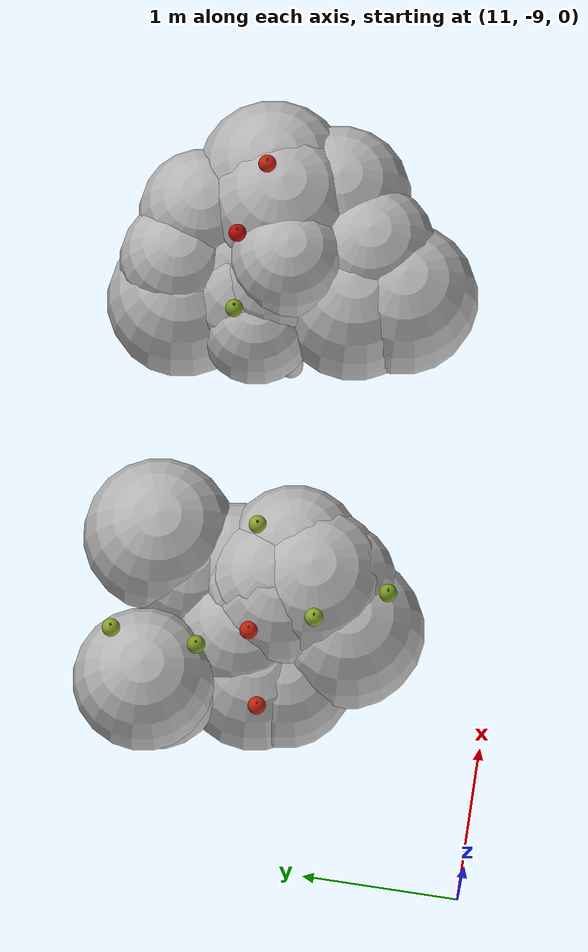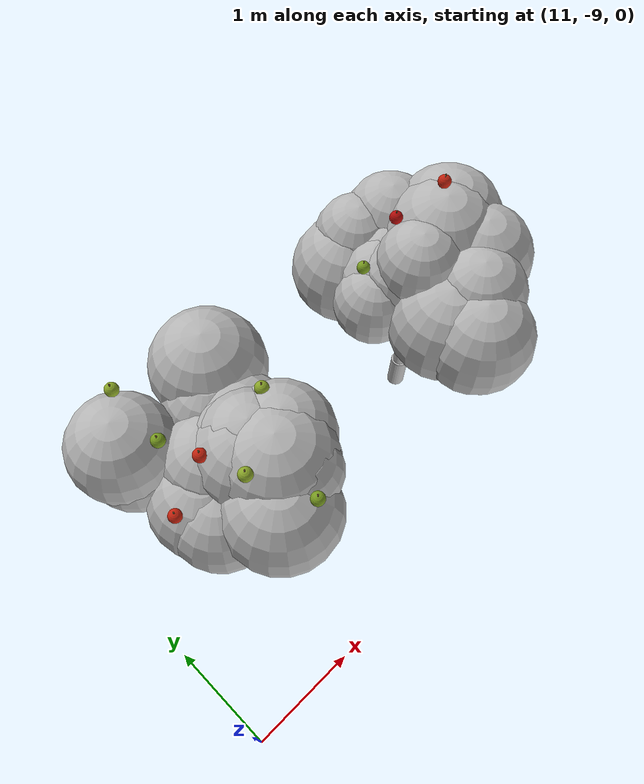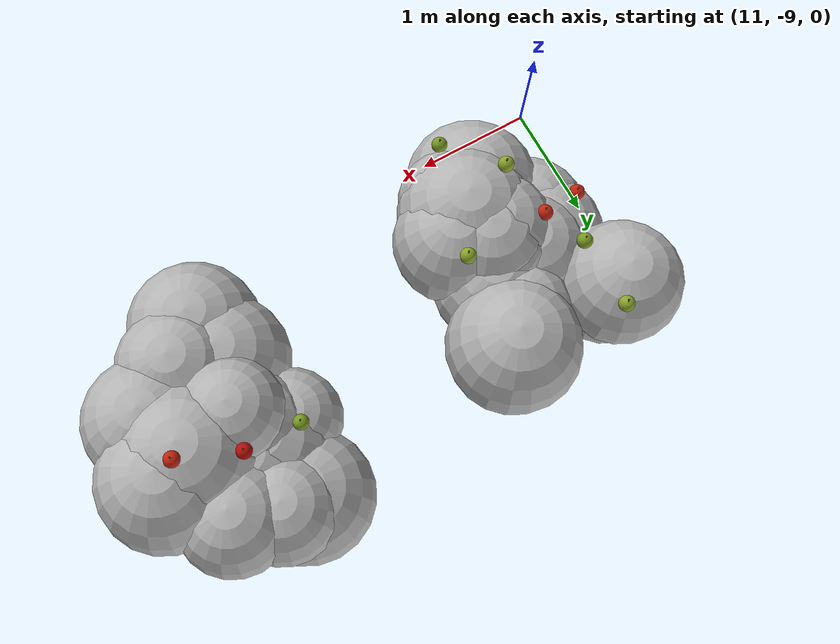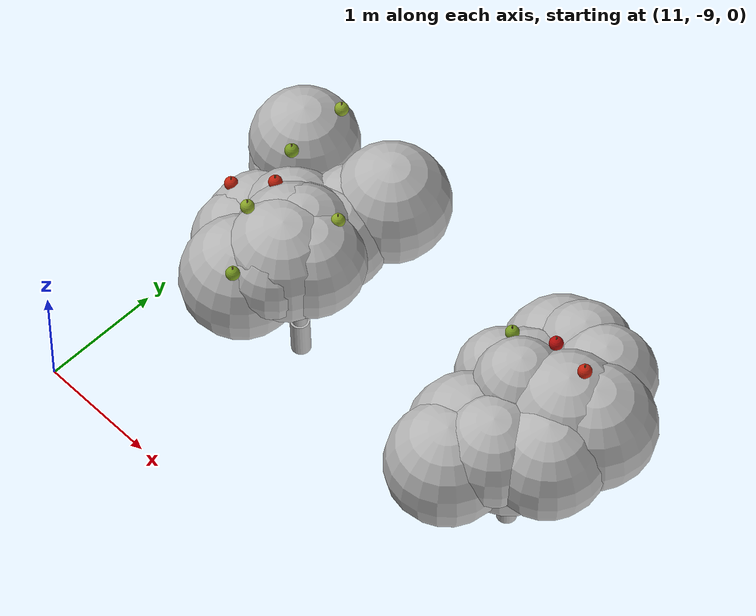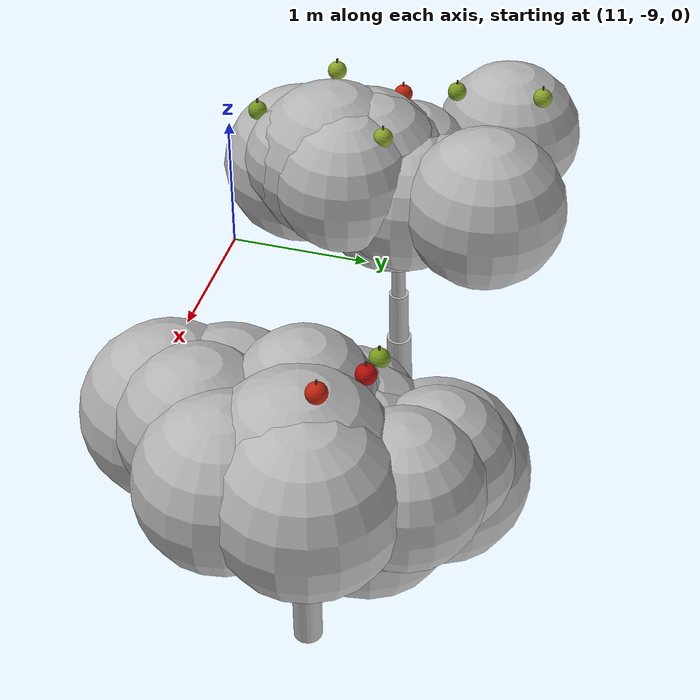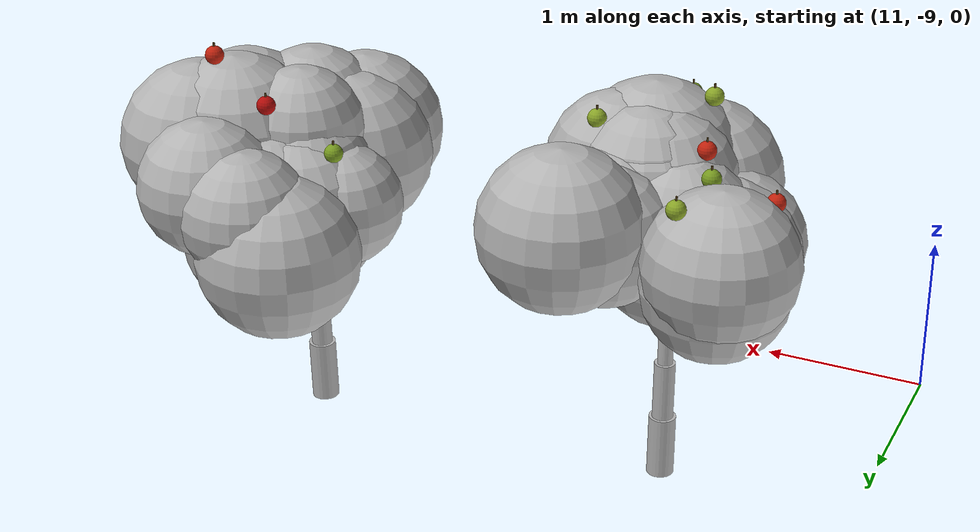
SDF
<sdf version="1.6">
 <world name="default">
  <model name="tree_r0_t13">
   <static>true</static>
   <link name="tree_r0_t13_trunk0">
    <pose>12.1675 -7.4509 0.1776 0.0280 -0.0011 0</pose>
    <collision name="tree_r0_t13_trunk0_c">
     <geometry><cylinder><radius>0.0799</radius><length>0.3765</length></cylinder></geometry>
    </collision>
    <visual name="tree_r0_t13_trunk0_v">
     <geometry><cylinder><radius>0.0799</radius><length>0.3765</length></cylinder></geometry>
     <material>
      <script>
       <uri>model://orchard/materials/scripts</uri>
       <uri>model://orchard/materials/textures</uri>
       <name>Orchard/Bark</name>
      </script>
     </material>
    </visual>
   </link>
   <link name="tree_r0_t13_trunk1">
    <pose>12.1671 -7.4608 0.5328 0.0280 -0.0011 0</pose>
    <visual name="tree_r0_t13_trunk1_v">
     <geometry><cylinder><radius>0.0623</radius><length>0.3765</length></cylinder></geometry>
     <material>
      <script>
       <uri>model://orchard/materials/scripts</uri>
       <uri>model://orchard/materials/textures</uri>
       <name>Orchard/Bark</name>
      </script>
     </material>
    </visual>
   </link>
   <link name="tree_r0_t13_trunk2">
    <pose>12.1667 -7.4708 0.8880 0.0280 -0.0011 0</pose>
    <visual name="tree_r0_t13_trunk2_v">
     <geometry><cylinder><radius>0.0448</radius><length>0.3765</length></cylinder></geometry>
     <material>
      <script>
       <uri>model://orchard/materials/scripts</uri>
       <uri>model://orchard/materials/textures</uri>
       <name>Orchard/Bark</name>
      </script>
     </material>
    </visual>
   </link>
   <link name="tree_r0_t13_br0">
    <pose>12.3688 -7.5253 1.2878 0.0000 0.7530 -0.2402</pose>
    <visual name="tree_r0_t13_br0_v">
     <geometry><cylinder><radius>0.0266</radius><length>0.6091</length></cylinder></geometry>
     <material>
      <script>
       <uri>model://orchard/materials/scripts</uri>
       <uri>model://orchard/materials/textures</uri>
       <name>Orchard/Bark</name>
      </script>
     </material>
    </visual>
   </link>
   <link name="tree_r0_t13_br1">
    <pose>12.2976 -7.2540 1.2679 0.0000 0.9050 1.0368</pose>
    <visual name="tree_r0_t13_br1_v">
     <geometry><cylinder><radius>0.0237</radius><length>0.6551</length></cylinder></geometry>
     <material>
      <script>
       <uri>model://orchard/materials/scripts</uri>
       <uri>model://orchard/materials/textures</uri>
       <name>Orchard/Bark</name>
      </script>
     </material>
    </visual>
   </link>
   <link name="tree_r0_t13_br2">
    <pose>11.9866 -7.2651 1.3255 0.0000 0.8173 2.2776</pose>
    <visual name="tree_r0_t13_br2_v">
     <geometry><cylinder><radius>0.0275</radius><length>0.7597</length></cylinder></geometry>
     <material>
      <script>
       <uri>model://orchard/materials/scripts</uri>
       <uri>model://orchard/materials/textures</uri>
       <name>Orchard/Bark</name>
      </script>
     </material>
    </visual>
   </link>
   <link name="tree_r0_t13_br3">
    <pose>11.9015 -7.6458 1.2584 0.0000 1.0214 3.7120</pose>
    <visual name="tree_r0_t13_br3_v">
     <geometry><cylinder><radius>0.0347</radius><length>0.7384</length></cylinder></geometry>
     <material>
      <script>
       <uri>model://orchard/materials/scripts</uri>
       <uri>model://orchard/materials/textures</uri>
       <name>Orchard/Bark</name>
      </script>
     </material>
    </visual>
   </link>
   <link name="tree_r0_t13_br4">
    <pose>12.2341 -7.6694 1.3416 0.0000 0.6391 5.0480</pose>
    <visual name="tree_r0_t13_br4_v">
     <geometry><cylinder><radius>0.0255</radius><length>0.6878</length></cylinder></geometry>
     <material>
      <script>
       <uri>model://orchard/materials/scripts</uri>
       <uri>model://orchard/materials/textures</uri>
       <name>Orchard/Bark</name>
      </script>
     </material>
    </visual>
   </link>
   <link name="tree_r0_t13_fol0">
    <pose>12.4044 -7.8282 1.8210 0 0 0</pose>
    <visual name="tree_r0_t13_fol0_v">
     <geometry><sphere><radius>0.4790</radius></sphere></geometry>
     <material>
      <script>
       <uri>model://orchard/materials/scripts</uri>
       <uri>model://orchard/materials/textures</uri>
       <name>Orchard/Foliage3</name>
      </script>
     </material>
    </visual>
   </link>
   <link name="tree_r0_t13_fol1">
    <pose>11.9000 -7.5615 1.4181 0 0 0</pose>
    <visual name="tree_r0_t13_fol1_v">
     <geometry><sphere><radius>0.4709</radius></sphere></geometry>
     <material>
      <script>
       <uri>model://orchard/materials/scripts</uri>
       <uri>model://orchard/materials/textures</uri>
       <name>Orchard/Foliage2</name>
      </script>
     </material>
    </visual>
   </link>
   <link name="tree_r0_t13_fol2">
    <pose>11.6805 -6.9169 1.7314 0 0 0</pose>
    <visual name="tree_r0_t13_fol2_v">
     <geometry><sphere><radius>0.4336</radius></sphere></geometry>
     <material>
      <script>
       <uri>model://orchard/materials/scripts</uri>
       <uri>model://orchard/materials/textures</uri>
       <name>Orchard/Foliage0</name>
      </script>
     </material>
    </visual>
   </link>
   <link name="tree_r0_t13_fol3">
    <pose>12.4478 -7.9788 1.8356 0 0 0</pose>
    <visual name="tree_r0_t13_fol3_v">
     <geometry><sphere><radius>0.3586</radius></sphere></geometry>
     <material>
      <script>
       <uri>model://orchard/materials/scripts</uri>
       <uri>model://orchard/materials/textures</uri>
       <name>Orchard/Foliage2</name>
      </script>
     </material>
    </visual>
   </link>
   <link name="tree_r0_t13_fol4">
    <pose>12.2739 -7.5331 1.4344 0 0 0</pose>
    <visual name="tree_r0_t13_fol4_v">
     <geometry><sphere><radius>0.3700</radius></sphere></geometry>
     <material>
      <script>
       <uri>model://orchard/materials/scripts</uri>
       <uri>model://orchard/materials/textures</uri>
       <name>Orchard/Foliage1</name>
      </script>
     </material>
    </visual>
   </link>
   <link name="tree_r0_t13_fol5">
    <pose>12.1671 -7.4875 1.4532 0 0 0</pose>
    <visual name="tree_r0_t13_fol5_v">
     <geometry><sphere><radius>0.4505</radius></sphere></geometry>
     <material>
      <script>
       <uri>model://orchard/materials/scripts</uri>
       <uri>model://orchard/materials/textures</uri>
       <name>Orchard/Foliage2</name>
      </script>
     </material>
    </visual>
   </link>
   <link name="tree_r0_t13_fol6">
    <pose>12.1068 -7.4428 1.6340 0 0 0</pose>
    <visual name="tree_r0_t13_fol6_v">
     <geometry><sphere><radius>0.4211</radius></sphere></geometry>
     <material>
      <script>
       <uri>model://orchard/materials/scripts</uri>
       <uri>model://orchard/materials/textures</uri>
       <name>Orchard/Foliage0</name>
      </script>
     </material>
    </visual>
   </link>
   <link name="tree_r0_t13_fol7">
    <pose>12.3073 -7.6464 1.7744 0 0 0</pose>
    <visual name="tree_r0_t13_fol7_v">
     <geometry><sphere><radius>0.4565</radius></sphere></geometry>
     <material>
      <script>
       <uri>model://orchard/materials/scripts</uri>
       <uri>model://orchard/materials/textures</uri>
       <name>Orchard/Foliage3</name>
      </script>
     </material>
    </visual>
   </link>
   <link name="tree_r0_t13_fol8">
    <pose>12.1981 -8.0770 1.6262 0 0 0</pose>
    <visual name="tree_r0_t13_fol8_v">
     <geometry><sphere><radius>0.4785</radius></sphere></geometry>
     <material>
      <script>
       <uri>model://orchard/materials/scripts</uri>
       <uri>model://orchard/materials/textures</uri>
       <name>Orchard/Foliage2</name>
      </script>
     </material>
    </visual>
   </link>
   <link name="tree_r0_t13_fol9">
    <pose>11.8816 -7.7477 1.4381 0 0 0</pose>
    <visual name="tree_r0_t13_fol9_v">
     <geometry><sphere><radius>0.4169</radius></sphere></geometry>
     <material>
      <script>
       <uri>model://orchard/materials/scripts</uri>
       <uri>model://orchard/materials/textures</uri>
       <name>Orchard/Foliage2</name>
      </script>
     </material>
    </visual>
   </link>
   <link name="tree_r0_t13_fol10">
    <pose>12.3661 -7.5965 1.8207 0 0 0</pose>
    <visual name="tree_r0_t13_fol10_v">
     <geometry><sphere><radius>0.4214</radius></sphere></geometry>
     <material>
      <script>
       <uri>model://orchard/materials/scripts</uri>
       <uri>model://orchard/materials/textures</uri>
       <name>Orchard/Foliage2</name>
      </script>
     </material>
    </visual>
   </link>
   <link name="tree_r0_t13_fol11">
    <pose>12.5758 -6.8677 1.7849 0 0 0</pose>
    <visual name="tree_r0_t13_fol11_v">
     <geometry><sphere><radius>0.4691</radius></sphere></geometry>
     <material>
      <script>
       <uri>model://orchard/materials/scripts</uri>
       <uri>model://orchard/materials/textures</uri>
       <name>Orchard/Foliage1</name>
      </script>
     </material>
    </visual>
   </link>
   <link name="tree_r0_t13_fol12">
    <pose>12.4598 -7.3485 1.6684 0 0 0</pose>
    <visual name="tree_r0_t13_fol12_v">
     <geometry><sphere><radius>0.4159</radius></sphere></geometry>
     <material>
      <script>
       <uri>model://orchard/materials/scripts</uri>
       <uri>model://orchard/materials/textures</uri>
       <name>Orchard/Foliage3</name>
      </script>
     </material>
    </visual>
   </link>
   <link name="tree_r0_t13_fol13">
    <pose>12.5694 -7.7008 1.8213 0 0 0</pose>
    <visual name="tree_r0_t13_fol13_v">
     <geometry><sphere><radius>0.4252</radius></sphere></geometry>
     <material>
      <script>
       <uri>model://orchard/materials/scripts</uri>
       <uri>model://orchard/materials/textures</uri>
       <name>Orchard/Foliage3</name>
      </script>
     </material>
    </visual>
   </link>
   <link name="tree_r0_t13_fol14">
    <pose>11.7217 -6.9769 1.5718 0 0 0</pose>
    <visual name="tree_r0_t13_fol14_v">
     <geometry><sphere><radius>0.4176</radius></sphere></geometry>
     <material>
      <script>
       <uri>model://orchard/materials/scripts</uri>
       <uri>model://orchard/materials/textures</uri>
       <name>Orchard/Foliage3</name>
      </script>
     </material>
    </visual>
   </link>
   <link name="tree_r0_t13_fol15">
    <pose>12.3618 -7.5970 1.7467 0 0 0</pose>
    <visual name="tree_r0_t13_fol15_v">
     <geometry><sphere><radius>0.4698</radius></sphere></geometry>
     <material>
      <script>
       <uri>model://orchard/materials/scripts</uri>
       <uri>model://orchard/materials/textures</uri>
       <name>Orchard/Foliage0</name>
      </script>
     </material>
    </visual>
   </link>
   <link name="tree_r0_t13_fol16">
    <pose>12.2748 -7.4987 1.4894 0 0 0</pose>
    <visual name="tree_r0_t13_fol16_v">
     <geometry><sphere><radius>0.3622</radius></sphere></geometry>
     <material>
      <script>
       <uri>model://orchard/materials/scripts</uri>
       <uri>model://orchard/materials/textures</uri>
       <name>Orchard/Foliage1</name>
      </script>
     </material>
    </visual>
   </link>
   <link name="tree_r0_t13_fol17">
    <pose>12.4105 -7.0877 1.6727 0 0 0</pose>
    <visual name="tree_r0_t13_fol17_v">
     <geometry><sphere><radius>0.3983</radius></sphere></geometry>
     <material>
      <script>
       <uri>model://orchard/materials/scripts</uri>
       <uri>model://orchard/materials/textures</uri>
       <name>Orchard/Foliage0</name>
      </script>
     </material>
    </visual>
   </link>
   <link name="tree_r0_t13_ap0">
    <pose>12.0834 -7.8892 2.2364 0 0 0</pose>
    <visual name="tree_r0_t13_ap0_v">
     <geometry><sphere><radius>0.0550</radius></sphere></geometry>
     <material>
      <ambient>0.220 0.264 0.064 1.00</ambient>
      <diffuse>0.550 0.660 0.160 1.00</diffuse>
      <specular>0.45 0.35 0.32 1</specular>
     </material>
    </visual>
   </link>
   <link name="tree_r0_t13_st0">
    <pose>12.0834 -7.8892 2.2886 0 0 0</pose>
    <visual name="tree_r0_t13_st0_v">
     <geometry><cylinder><radius>0.0060</radius><length>0.0500</length></cylinder></geometry>
     <material><ambient>0.128 0.096 0.040 1.00</ambient><diffuse>0.320 0.240 0.100 1.00</diffuse></material>
    </visual>
   </link>
   <link name="tree_r0_t13_ap1">
    <pose>12.6170 -7.4664 2.1797 0 0 0</pose>
    <visual name="tree_r0_t13_ap1_v">
     <geometry><sphere><radius>0.0550</radius></sphere></geometry>
     <material>
      <ambient>0.220 0.264 0.064 1.00</ambient>
      <diffuse>0.550 0.660 0.160 1.00</diffuse>
      <specular>0.45 0.35 0.32 1</specular>
     </material>
    </visual>
   </link>
   <link name="tree_r0_t13_st1">
    <pose>12.6170 -7.4664 2.2320 0 0 0</pose>
    <visual name="tree_r0_t13_st1_v">
     <geometry><cylinder><radius>0.0060</radius><length>0.0500</length></cylinder></geometry>
     <material><ambient>0.128 0.096 0.040 1.00</ambient><diffuse>0.320 0.240 0.100 1.00</diffuse></material>
    </visual>
   </link>
   <link name="tree_r0_t13_ap2">
    <pose>11.9860 -7.5108 2.0837 0 0 0</pose>
    <visual name="tree_r0_t13_ap2_v">
     <geometry><sphere><radius>0.0550</radius></sphere></geometry>
     <material>
      <ambient>0.312 0.056 0.024 1.00</ambient>
      <diffuse>0.780 0.140 0.060 1.00</diffuse>
      <specular>0.45 0.35 0.32 1</specular>
     </material>
    </visual>
   </link>
   <link name="tree_r0_t13_st2">
    <pose>11.9860 -7.5108 2.1360 0 0 0</pose>
    <visual name="tree_r0_t13_st2_v">
     <geometry><cylinder><radius>0.0060</radius><length>0.0500</length></cylinder></geometry>
     <material><ambient>0.128 0.096 0.040 1.00</ambient><diffuse>0.320 0.240 0.100 1.00</diffuse></material>
    </visual>
   </link>
   <link name="tree_r0_t13_ap3">
    <pose>11.8533 -7.2143 2.0706 0 0 0</pose>
    <visual name="tree_r0_t13_ap3_v">
     <geometry><sphere><radius>0.0550</radius></sphere></geometry>
     <material>
      <ambient>0.192 0.248 0.052 1.00</ambient>
      <diffuse>0.480 0.620 0.130 1.00</diffuse>
      <specular>0.45 0.35 0.32 1</specular>
     </material>
    </visual>
   </link>
   <link name="tree_r0_t13_st3">
    <pose>11.8533 -7.2143 2.1229 0 0 0</pose>
    <visual name="tree_r0_t13_st3_v">
     <geometry><cylinder><radius>0.0060</radius><length>0.0500</length></cylinder></geometry>
     <material><ambient>0.128 0.096 0.040 1.00</ambient><diffuse>0.320 0.240 0.100 1.00</diffuse></material>
    </visual>
   </link>
   <link name="tree_r0_t13_ap4">
    <pose>11.6091 -7.6188 1.7940 0 0 0</pose>
    <visual name="tree_r0_t13_ap4_v">
     <geometry><sphere><radius>0.0550</radius></sphere></geometry>
     <material>
      <ambient>0.312 0.056 0.024 1.00</ambient>
      <diffuse>0.780 0.140 0.060 1.00</diffuse>
      <specular>0.45 0.35 0.32 1</specular>
     </material>
    </visual>
   </link>
   <link name="tree_r0_t13_st4">
    <pose>11.6091 -7.6188 1.8463 0 0 0</pose>
    <visual name="tree_r0_t13_st4_v">
     <geometry><cylinder><radius>0.0060</radius><length>0.0500</length></cylinder></geometry>
     <material><ambient>0.128 0.096 0.040 1.00</ambient><diffuse>0.320 0.240 0.100 1.00</diffuse></material>
    </visual>
   </link>
   <link name="tree_r0_t13_ap5">
    <pose>11.8643 -6.6987 2.1212 0 0 0</pose>
    <visual name="tree_r0_t13_ap5_v">
     <geometry><sphere><radius>0.0550</radius></sphere></geometry>
     <material>
      <ambient>0.220 0.264 0.064 1.00</ambient>
      <diffuse>0.550 0.660 0.160 1.00</diffuse>
      <specular>0.45 0.35 0.32 1</specular>
     </material>
    </visual>
   </link>
   <link name="tree_r0_t13_st5">
    <pose>11.8643 -6.6987 2.1735 0 0 0</pose>
    <visual name="tree_r0_t13_st5_v">
     <geometry><cylinder><radius>0.0060</radius><length>0.0500</length></cylinder></geometry>
     <material><ambient>0.128 0.096 0.040 1.00</ambient><diffuse>0.320 0.240 0.100 1.00</diffuse></material>
    </visual>
   </link>
   <link name="tree_r0_t13_ap6">
    <pose>12.3521 -8.2996 2.0540 0 0 0</pose>
    <visual name="tree_r0_t13_ap6_v">
     <geometry><sphere><radius>0.0550</radius></sphere></geometry>
     <material>
      <ambient>0.192 0.248 0.052 1.00</ambient>
      <diffuse>0.480 0.620 0.130 1.00</diffuse>
      <specular>0.45 0.35 0.32 1</specular>
     </material>
    </visual>
   </link>
   <link name="tree_r0_t13_st6">
    <pose>12.3521 -8.2996 2.1063 0 0 0</pose>
    <visual name="tree_r0_t13_st6_v">
     <geometry><cylinder><radius>0.0060</radius><length>0.0500</length></cylinder></geometry>
     <material><ambient>0.128 0.096 0.040 1.00</ambient><diffuse>0.320 0.240 0.100 1.00</diffuse></material>
    </visual>
   </link>
  </model>
  <model name="tree_r0_t14">
   <static>true</static>
   <link name="tree_r0_t14_trunk0">
    <pose>14.3923 -7.3946 0.1778 0.0025 0.0257 0</pose>
    <collision name="tree_r0_t14_trunk0_c">
     <geometry><cylinder><radius>0.0815</radius><length>0.3768</length></cylinder></geometry>
    </collision>
    <visual name="tree_r0_t14_trunk0_v">
     <geometry><cylinder><radius>0.0815</radius><length>0.3768</length></cylinder></geometry>
     <material>
      <script>
       <uri>model://orchard/materials/scripts</uri>
       <uri>model://orchard/materials/textures</uri>
       <name>Orchard/Bark</name>
      </script>
     </material>
    </visual>
   </link>
   <link name="tree_r0_t14_trunk1">
    <pose>14.4014 -7.3955 0.5333 0.0025 0.0257 0</pose>
    <visual name="tree_r0_t14_trunk1_v">
     <geometry><cylinder><radius>0.0636</radius><length>0.3768</length></cylinder></geometry>
     <material>
      <script>
       <uri>model://orchard/materials/scripts</uri>
       <uri>model://orchard/materials/textures</uri>
       <name>Orchard/Bark</name>
      </script>
     </material>
    </visual>
   </link>
   <link name="tree_r0_t14_trunk2">
    <pose>14.4106 -7.3964 0.8888 0.0025 0.0257 0</pose>
    <visual name="tree_r0_t14_trunk2_v">
     <geometry><cylinder><radius>0.0456</radius><length>0.3768</length></cylinder></geometry>
     <material>
      <script>
       <uri>model://orchard/materials/scripts</uri>
       <uri>model://orchard/materials/textures</uri>
       <name>Orchard/Bark</name>
      </script>
     </material>
    </visual>
   </link>
   <link name="tree_r0_t14_br0">
    <pose>14.7446 -7.3847 1.2781 0.0000 1.0003 0.0371</pose>
    <visual name="tree_r0_t14_br0_v">
     <geometry><cylinder><radius>0.0285</radius><length>0.7835</length></cylinder></geometry>
     <material>
      <script>
       <uri>model://orchard/materials/scripts</uri>
       <uri>model://orchard/materials/textures</uri>
       <name>Orchard/Bark</name>
      </script>
     </material>
    </visual>
   </link>
   <link name="tree_r0_t14_br1">
    <pose>14.4618 -7.1328 1.1911 0.0000 1.1359 1.3958</pose>
    <visual name="tree_r0_t14_br1_v">
     <geometry><cylinder><radius>0.0286</radius><length>0.5913</length></cylinder></geometry>
     <material>
      <script>
       <uri>model://orchard/materials/scripts</uri>
       <uri>model://orchard/materials/textures</uri>
       <name>Orchard/Bark</name>
      </script>
     </material>
    </visual>
   </link>
   <link name="tree_r0_t14_br2">
    <pose>14.1540 -7.3092 1.2228 0.0000 1.0548 2.8177</pose>
    <visual name="tree_r0_t14_br2_v">
     <geometry><cylinder><radius>0.0256</radius><length>0.6334</length></cylinder></geometry>
     <material>
      <script>
       <uri>model://orchard/materials/scripts</uri>
       <uri>model://orchard/materials/textures</uri>
       <name>Orchard/Bark</name>
      </script>
     </material>
    </visual>
   </link>
   <link name="tree_r0_t14_br3">
    <pose>14.2506 -7.5749 1.3278 0.0000 0.7479 3.9665</pose>
    <visual name="tree_r0_t14_br3_v">
     <geometry><cylinder><radius>0.0346</radius><length>0.7128</length></cylinder></geometry>
     <material>
      <script>
       <uri>model://orchard/materials/scripts</uri>
       <uri>model://orchard/materials/textures</uri>
       <name>Orchard/Bark</name>
      </script>
     </material>
    </visual>
   </link>
   <link name="tree_r0_t14_br4">
    <pose>14.4461 -7.7365 1.2340 0.0000 1.1143 4.8033</pose>
    <visual name="tree_r0_t14_br4_v">
     <geometry><cylinder><radius>0.0357</radius><length>0.7599</length></cylinder></geometry>
     <material>
      <script>
       <uri>model://orchard/materials/scripts</uri>
       <uri>model://orchard/materials/textures</uri>
       <name>Orchard/Bark</name>
      </script>
     </material>
    </visual>
   </link>
   <link name="tree_r0_t14_fol0">
    <pose>14.9603 -7.6090 1.6721 0 0 0</pose>
    <visual name="tree_r0_t14_fol0_v">
     <geometry><sphere><radius>0.4581</radius></sphere></geometry>
     <material>
      <script>
       <uri>model://orchard/materials/scripts</uri>
       <uri>model://orchard/materials/textures</uri>
       <name>Orchard/Foliage0</name>
      </script>
     </material>
    </visual>
   </link>
   <link name="tree_r0_t14_fol1">
    <pose>14.1090 -7.2166 1.4582 0 0 0</pose>
    <visual name="tree_r0_t14_fol1_v">
     <geometry><sphere><radius>0.3608</radius></sphere></geometry>
     <material>
      <script>
       <uri>model://orchard/materials/scripts</uri>
       <uri>model://orchard/materials/textures</uri>
       <name>Orchard/Foliage2</name>
      </script>
     </material>
    </visual>
   </link>
   <link name="tree_r0_t14_fol2">
    <pose>14.7409 -6.7779 1.6418 0 0 0</pose>
    <visual name="tree_r0_t14_fol2_v">
     <geometry><sphere><radius>0.4052</radius></sphere></geometry>
     <material>
      <script>
       <uri>model://orchard/materials/scripts</uri>
       <uri>model://orchard/materials/textures</uri>
       <name>Orchard/Foliage0</name>
      </script>
     </material>
    </visual>
   </link>
   <link name="tree_r0_t14_fol3">
    <pose>14.4311 -7.4026 1.5094 0 0 0</pose>
    <visual name="tree_r0_t14_fol3_v">
     <geometry><sphere><radius>0.3578</radius></sphere></geometry>
     <material>
      <script>
       <uri>model://orchard/materials/scripts</uri>
       <uri>model://orchard/materials/textures</uri>
       <name>Orchard/Foliage0</name>
      </script>
     </material>
    </visual>
   </link>
   <link name="tree_r0_t14_fol4">
    <pose>14.4412 -7.3681 1.8293 0 0 0</pose>
    <visual name="tree_r0_t14_fol4_v">
     <geometry><sphere><radius>0.3667</radius></sphere></geometry>
     <material>
      <script>
       <uri>model://orchard/materials/scripts</uri>
       <uri>model://orchard/materials/textures</uri>
       <name>Orchard/Foliage2</name>
      </script>
     </material>
    </visual>
   </link>
   <link name="tree_r0_t14_fol5">
    <pose>14.2581 -6.7206 1.3271 0 0 0</pose>
    <visual name="tree_r0_t14_fol5_v">
     <geometry><sphere><radius>0.4811</radius></sphere></geometry>
     <material>
      <script>
       <uri>model://orchard/materials/scripts</uri>
       <uri>model://orchard/materials/textures</uri>
       <name>Orchard/Foliage3</name>
      </script>
     </material>
    </visual>
   </link>
   <link name="tree_r0_t14_fol6">
    <pose>14.6382 -7.8498 1.6864 0 0 0</pose>
    <visual name="tree_r0_t14_fol6_v">
     <geometry><sphere><radius>0.4254</radius></sphere></geometry>
     <material>
      <script>
       <uri>model://orchard/materials/scripts</uri>
       <uri>model://orchard/materials/textures</uri>
       <name>Orchard/Foliage1</name>
      </script>
     </material>
    </visual>
   </link>
   <link name="tree_r0_t14_fol7">
    <pose>14.6067 -7.6324 1.4088 0 0 0</pose>
    <visual name="tree_r0_t14_fol7_v">
     <geometry><sphere><radius>0.4878</radius></sphere></geometry>
     <material>
      <script>
       <uri>model://orchard/materials/scripts</uri>
       <uri>model://orchard/materials/textures</uri>
       <name>Orchard/Foliage2</name>
      </script>
     </material>
    </visual>
   </link>
   <link name="tree_r0_t14_fol8">
    <pose>14.5024 -7.0808 1.4141 0 0 0</pose>
    <visual name="tree_r0_t14_fol8_v">
     <geometry><sphere><radius>0.4936</radius></sphere></geometry>
     <material>
      <script>
       <uri>model://orchard/materials/scripts</uri>
       <uri>model://orchard/materials/textures</uri>
       <name>Orchard/Foliage2</name>
      </script>
     </material>
    </visual>
   </link>
   <link name="tree_r0_t14_fol9">
    <pose>14.4128 -8.0946 1.5340 0 0 0</pose>
    <visual name="tree_r0_t14_fol9_v">
     <geometry><sphere><radius>0.4780</radius></sphere></geometry>
     <material>
      <script>
       <uri>model://orchard/materials/scripts</uri>
       <uri>model://orchard/materials/textures</uri>
       <name>Orchard/Foliage1</name>
      </script>
     </material>
    </visual>
   </link>
   <link name="tree_r0_t14_fol10">
    <pose>14.9284 -7.2124 1.4736 0 0 0</pose>
    <visual name="tree_r0_t14_fol10_v">
     <geometry><sphere><radius>0.3866</radius></sphere></geometry>
     <material>
      <script>
       <uri>model://orchard/materials/scripts</uri>
       <uri>model://orchard/materials/textures</uri>
       <name>Orchard/Foliage0</name>
      </script>
     </material>
    </visual>
   </link>
   <link name="tree_r0_t14_fol11">
    <pose>14.5316 -7.0210 1.2688 0 0 0</pose>
    <visual name="tree_r0_t14_fol11_v">
     <geometry><sphere><radius>0.4829</radius></sphere></geometry>
     <material>
      <script>
       <uri>model://orchard/materials/scripts</uri>
       <uri>model://orchard/materials/textures</uri>
       <name>Orchard/Foliage2</name>
      </script>
     </material>
    </visual>
   </link>
   <link name="tree_r0_t14_fol12">
    <pose>15.0176 -7.1813 1.7181 0 0 0</pose>
    <visual name="tree_r0_t14_fol12_v">
     <geometry><sphere><radius>0.4844</radius></sphere></geometry>
     <material>
      <script>
       <uri>model://orchard/materials/scripts</uri>
       <uri>model://orchard/materials/textures</uri>
       <name>Orchard/Foliage2</name>
      </script>
     </material>
    </visual>
   </link>
   <link name="tree_r0_t14_fol13">
    <pose>14.8268 -7.2703 1.7587 0 0 0</pose>
    <visual name="tree_r0_t14_fol13_v">
     <geometry><sphere><radius>0.4865</radius></sphere></geometry>
     <material>
      <script>
       <uri>model://orchard/materials/scripts</uri>
       <uri>model://orchard/materials/textures</uri>
       <name>Orchard/Foliage0</name>
      </script>
     </material>
    </visual>
   </link>
   <link name="tree_r0_t14_fol14">
    <pose>14.3467 -7.1400 1.4043 0 0 0</pose>
    <visual name="tree_r0_t14_fol14_v">
     <geometry><sphere><radius>0.4898</radius></sphere></geometry>
     <material>
      <script>
       <uri>model://orchard/materials/scripts</uri>
       <uri>model://orchard/materials/textures</uri>
       <name>Orchard/Foliage1</name>
      </script>
     </material>
    </visual>
   </link>
   <link name="tree_r0_t14_fol15">
    <pose>14.3532 -7.8003 1.5051 0 0 0</pose>
    <visual name="tree_r0_t14_fol15_v">
     <geometry><sphere><radius>0.4929</radius></sphere></geometry>
     <material>
      <script>
       <uri>model://orchard/materials/scripts</uri>
       <uri>model://orchard/materials/textures</uri>
       <name>Orchard/Foliage2</name>
      </script>
     </material>
    </visual>
   </link>
   <link name="tree_r0_t14_fol16">
    <pose>14.3623 -7.2766 1.6160 0 0 0</pose>
    <visual name="tree_r0_t14_fol16_v">
     <geometry><sphere><radius>0.3725</radius></sphere></geometry>
     <material>
      <script>
       <uri>model://orchard/materials/scripts</uri>
       <uri>model://orchard/materials/textures</uri>
       <name>Orchard/Foliage1</name>
      </script>
     </material>
    </visual>
   </link>
   <link name="tree_r0_t14_fol17">
    <pose>14.4354 -6.6792 1.5660 0 0 0</pose>
    <visual name="tree_r0_t14_fol17_v">
     <geometry><sphere><radius>0.3820</radius></sphere></geometry>
     <material>
      <script>
       <uri>model://orchard/materials/scripts</uri>
       <uri>model://orchard/materials/textures</uri>
       <name>Orchard/Foliage0</name>
      </script>
     </material>
    </visual>
   </link>
   <link name="tree_r0_t14_ap0">
    <pose>14.0756 -7.0843 1.8452 0 0 0</pose>
    <visual name="tree_r0_t14_ap0_v">
     <geometry><sphere><radius>0.0550</radius></sphere></geometry>
     <material>
      <ambient>0.192 0.248 0.052 1.00</ambient>
      <diffuse>0.480 0.620 0.130 1.00</diffuse>
      <specular>0.45 0.35 0.32 1</specular>
     </material>
    </visual>
   </link>
   <link name="tree_r0_t14_st0">
    <pose>14.0756 -7.0843 1.8975 0 0 0</pose>
    <visual name="tree_r0_t14_st0_v">
     <geometry><cylinder><radius>0.0060</radius><length>0.0500</length></cylinder></geometry>
     <material><ambient>0.128 0.096 0.040 1.00</ambient><diffuse>0.320 0.240 0.100 1.00</diffuse></material>
    </visual>
   </link>
   <link name="tree_r0_t14_ap1">
    <pose>14.8817 -7.1658 2.2815 0 0 0</pose>
    <visual name="tree_r0_t14_ap1_v">
     <geometry><sphere><radius>0.0550</radius></sphere></geometry>
     <material>
      <ambient>0.312 0.056 0.024 1.00</ambient>
      <diffuse>0.780 0.140 0.060 1.00</diffuse>
      <specular>0.45 0.35 0.32 1</specular>
     </material>
    </visual>
   </link>
   <link name="tree_r0_t14_st1">
    <pose>14.8817 -7.1658 2.3338 0 0 0</pose>
    <visual name="tree_r0_t14_st1_v">
     <geometry><cylinder><radius>0.0060</radius><length>0.0500</length></cylinder></geometry>
     <material><ambient>0.128 0.096 0.040 1.00</ambient><diffuse>0.320 0.240 0.100 1.00</diffuse></material>
    </visual>
   </link>
   <link name="tree_r0_t14_ap2">
    <pose>14.4787 -7.0427 2.0861 0 0 0</pose>
    <visual name="tree_r0_t14_ap2_v">
     <geometry><sphere><radius>0.0550</radius></sphere></geometry>
     <material>
      <ambient>0.288 0.020 0.016 1.00</ambient>
      <diffuse>0.720 0.050 0.040 1.00</diffuse>
      <specular>0.45 0.35 0.32 1</specular>
     </material>
    </visual>
   </link>
   <link name="tree_r0_t14_st2">
    <pose>14.4787 -7.0427 2.1383 0 0 0</pose>
    <visual name="tree_r0_t14_st2_v">
     <geometry><cylinder><radius>0.0060</radius><length>0.0500</length></cylinder></geometry>
     <material><ambient>0.128 0.096 0.040 1.00</ambient><diffuse>0.320 0.240 0.100 1.00</diffuse></material>
    </visual>
   </link>
  </model>
 </world>
</sdf>
